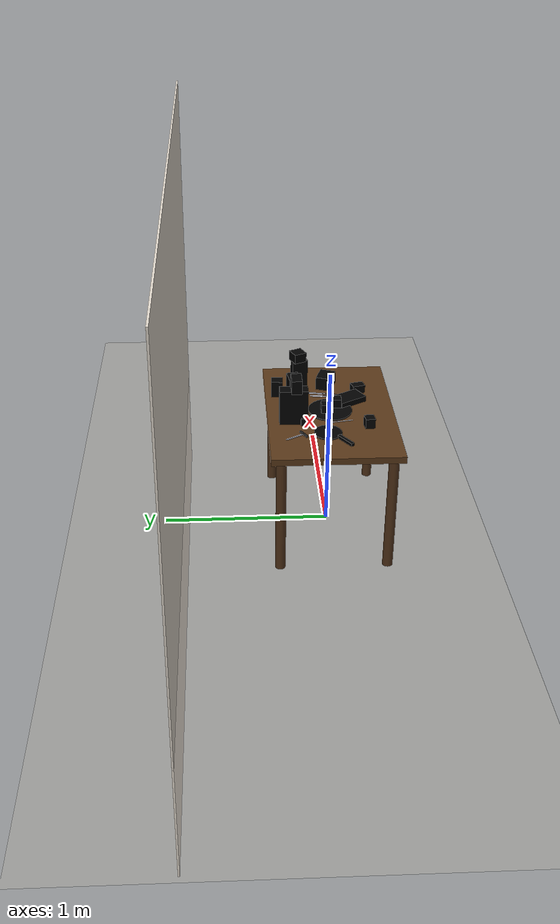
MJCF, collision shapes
<mujoco>
  <compiler angle="degree"/>
  <option timestep="0.0005" gravity="0 0 -9.81" integrator="implicitfast" cone="elliptic" noslip_iterations="5"/>
  <visual><global offwidth="1920" offheight="1440"/><headlight diffuse="0.55 0.55 0.55" ambient="0.38 0.38 0.38" specular="0.25 0.25 0.25"/><quality shadowsize="4096"/></visual>
  <asset>
    <mesh name="v0" file="/root/.openclaw/workspace-lab/scene-gen/data/assets/ycb/029_plate/029_plate/google_16k/textured.obj"/>
    <mesh name="v1" file="/root/.openclaw/workspace-lab/scene-gen/data/assets/ycb/013_apple/013_apple/google_16k/textured.obj"/>
    <mesh name="v2" file="/root/.openclaw/workspace-lab/scene-gen/data/assets/ycb/017_orange/017_orange/google_16k/textured.obj"/>
    <mesh name="v3" file="/root/.openclaw/workspace-lab/scene-gen/data/assets/ycb/024_bowl/024_bowl/google_16k/textured.obj"/>
    <mesh name="v4" file="/root/.openclaw/workspace-lab/scene-gen/data/assets/ycb/014_lemon/014_lemon/google_16k/textured.obj"/>
    <mesh name="v5" file="/root/.openclaw/workspace-lab/scene-gen/data/assets/ycb/003_cracker_box/003_cracker_box/google_16k/textured.obj"/>
    <mesh name="v6" file="/root/.openclaw/workspace-lab/scene-gen/data/assets/ycb/010_potted_meat_can/010_potted_meat_can/google_16k/textured.obj"/>
    <mesh name="v7" file="/root/.openclaw/workspace-lab/scene-gen/data/assets/ycb/006_mustard_bottle/006_mustard_bottle/google_16k/textured.obj"/>
    <mesh name="v8" file="/root/.openclaw/workspace-lab/scene-gen/data/assets/ycb/005_tomato_soup_can/005_tomato_soup_can/google_16k/textured.obj"/>
    <mesh name="v9" file="/root/.openclaw/workspace-lab/scene-gen/data/assets/ycb/004_sugar_box/004_sugar_box/google_16k/textured.obj"/>
    <mesh name="v10" file="/root/.openclaw/workspace-lab/scene-gen/data/assets/ycb/077_rubiks_cube/077_rubiks_cube/google_16k/textured.obj"/>
    <mesh name="v11" file="/root/.openclaw/workspace-lab/scene-gen/data/assets/ycb/025_mug/025_mug/google_16k/textured.obj"/>
    <mesh name="v12" file="/root/.openclaw/workspace-lab/scene-gen/data/assets/ycb/065-a_cups/065-a_cups/google_16k/textured.obj"/>
    <mesh name="v13" file="/root/.openclaw/workspace-lab/scene-gen/data/assets/ycb/011_banana/011_banana/google_16k/textured.obj"/>
    <mesh name="v14" file="/root/.openclaw/workspace-lab/scene-gen/data/assets/ycb/040_large_marker/040_large_marker/google_16k/textured.obj"/>
    <mesh name="v15" file="/root/.openclaw/workspace-lab/scene-gen/data/assets/ycb/061_foam_brick/061_foam_brick/google_16k/textured.obj"/>
    <texture name="tw" type="2d" builtin="flat" rgb1="0.35 0.22 0.10" rgb2="0.32 0.20 0.08" width="512" height="512" mark="random" markrgb="0.38 0.24 0.12" random="0.03"/>
    <texture name="tf" type="2d" builtin="checker" rgb1="0.75 0.72 0.68" rgb2="0.70 0.67 0.63" width="512" height="512"/>
    <texture name="tex0" type="2d" file="/root/.openclaw/workspace-lab/scene-gen/data/assets/ycb/029_plate/029_plate/google_16k/texture_map.png"/>
    <texture name="tex1" type="2d" file="/root/.openclaw/workspace-lab/scene-gen/data/assets/ycb/013_apple/013_apple/google_16k/texture_map.png"/>
    <texture name="tex2" type="2d" file="/root/.openclaw/workspace-lab/scene-gen/data/assets/ycb/017_orange/017_orange/google_16k/texture_map.png"/>
    <texture name="tex3" type="2d" file="/root/.openclaw/workspace-lab/scene-gen/data/assets/ycb/024_bowl/024_bowl/google_16k/texture_map.png"/>
    <texture name="tex4" type="2d" file="/root/.openclaw/workspace-lab/scene-gen/data/assets/ycb/014_lemon/014_lemon/google_16k/texture_map.png"/>
    <texture name="tex5" type="2d" file="/root/.openclaw/workspace-lab/scene-gen/data/assets/ycb/003_cracker_box/003_cracker_box/google_16k/texture_map.png"/>
    <texture name="tex6" type="2d" file="/root/.openclaw/workspace-lab/scene-gen/data/assets/ycb/010_potted_meat_can/010_potted_meat_can/google_16k/texture_map.png"/>
    <texture name="tex7" type="2d" file="/root/.openclaw/workspace-lab/scene-gen/data/assets/ycb/006_mustard_bottle/006_mustard_bottle/google_16k/texture_map.png"/>
    <texture name="tex8" type="2d" file="/root/.openclaw/workspace-lab/scene-gen/data/assets/ycb/005_tomato_soup_can/005_tomato_soup_can/google_16k/texture_map.png"/>
    <texture name="tex9" type="2d" file="/root/.openclaw/workspace-lab/scene-gen/data/assets/ycb/004_sugar_box/004_sugar_box/google_16k/texture_map.png"/>
    <texture name="tex10" type="2d" file="/root/.openclaw/workspace-lab/scene-gen/data/assets/ycb/077_rubiks_cube/077_rubiks_cube/google_16k/texture_map.png"/>
    <texture name="tex11" type="2d" file="/root/.openclaw/workspace-lab/scene-gen/data/assets/ycb/025_mug/025_mug/google_16k/texture_map.png"/>
    <texture name="tex12" type="2d" file="/root/.openclaw/workspace-lab/scene-gen/data/assets/ycb/065-a_cups/065-a_cups/google_16k/texture_map.png"/>
    <texture name="tex13" type="2d" file="/root/.openclaw/workspace-lab/scene-gen/data/assets/ycb/011_banana/011_banana/google_16k/texture_map.png"/>
    <texture name="tex14" type="2d" file="/root/.openclaw/workspace-lab/scene-gen/data/assets/ycb/040_large_marker/040_large_marker/google_16k/texture_map.png"/>
    <texture name="tex15" type="2d" file="/root/.openclaw/workspace-lab/scene-gen/data/assets/ycb/061_foam_brick/061_foam_brick/google_16k/texture_map.png"/>
    <material name="tm" texture="tw" shininess="0.4" specular="0.25" reflectance="0.05"/>
    <material name="fm" texture="tf" shininess="0.12" texrepeat="8 8"/>
    <material name="wm" rgba="0.88 0.85 0.80 1" shininess="0.05"/>
    <material name="m0" texture="tex0" shininess="0.4" specular="0.25"/>
    <material name="m1" texture="tex1" shininess="0.4" specular="0.25"/>
    <material name="m2" texture="tex2" shininess="0.4" specular="0.25"/>
    <material name="m3" texture="tex3" shininess="0.4" specular="0.25"/>
    <material name="m4" texture="tex4" shininess="0.4" specular="0.25"/>
    <material name="m5" texture="tex5" shininess="0.4" specular="0.25"/>
    <material name="m6" texture="tex6" shininess="0.4" specular="0.25"/>
    <material name="m7" texture="tex7" shininess="0.4" specular="0.25"/>
    <material name="m8" texture="tex8" shininess="0.4" specular="0.25"/>
    <material name="m9" texture="tex9" shininess="0.4" specular="0.25"/>
    <material name="m10" texture="tex10" shininess="0.4" specular="0.25"/>
    <material name="m11" texture="tex11" shininess="0.4" specular="0.25"/>
    <material name="m12" texture="tex12" shininess="0.4" specular="0.25"/>
    <material name="m13" texture="tex13" shininess="0.4" specular="0.25"/>
    <material name="m14" texture="tex14" shininess="0.4" specular="0.25"/>
    <material name="m15" texture="tex15" shininess="0.4" specular="0.25"/>

    <material name="steel" rgba="0.78 0.78 0.82 1" shininess="0.9" specular="0.7" reflectance="0.3"/>
    <material name="dark_handle" rgba="0.20 0.12 0.08 1" shininess="0.3" specular="0.1"/>
    <material name="black_plastic" rgba="0.12 0.12 0.12 1" shininess="0.2" specular="0.1"/>

  </asset>
  <worldbody>
    <light pos="0.3 -0.4 2.0" dir="-0.15 0.2 -1" diffuse="0.92 0.87 0.80" castshadow="true"/>
    <light pos="-0.4 0.5 1.8" dir="0.2 -0.25 -1" diffuse="0.35 0.35 0.38"/>
    <light pos="0 -0.3 1.6" dir="0 0.15 -1" diffuse="0.25 0.23 0.22"/>
    <geom type="plane" size="3 3 0.01" material="fm" friction="0.8 0.005 0.001"/>
    <geom type="box" size="2 0.005 1.5" pos="0 0.9 0.75" material="wm"/>
    <body name="table" pos="0 0 0.75">
      <geom type="box" size="0.55 0.375 0.02" material="tm" mass="50"
            friction="0.8 0.005 0.001" solref="0.002 1" solimp="0.98 0.99 0.001" condim="4"/>
    </body>
    <geom type="cylinder" size="0.03 0.375" pos="0.49000000000000005 0.315 0.375" rgba="0.32 0.20 0.10 1"/>
    <geom type="cylinder" size="0.03 0.375" pos="-0.49000000000000005 0.315 0.375" rgba="0.32 0.20 0.10 1"/>
    <geom type="cylinder" size="0.03 0.375" pos="0.49000000000000005 -0.315 0.375" rgba="0.32 0.20 0.10 1"/>
    <geom type="cylinder" size="0.03 0.375" pos="-0.49000000000000005 -0.315 0.375" rgba="0.32 0.20 0.10 1"/>
    <body name="o0" pos="0.0000 0.0000 0.77511" quat="1.0000 0 0 0.0000"><freejoint name="fj0"/><geom name="vis0" type="mesh" mesh="v0" material="m0" contype="0" conaffinity="0" mass="0"/><geom name="col0" type="cylinder" size="0.13008 0.004" pos="-0.01162 0.00002 0.00089" rgba="0 0 0 0" mass="0.2790" friction="0.8 0.005 0.001" solref="0.004 1" solimp="0.95 0.99 0.001" condim="4"/></body>
    <body name="o1" pos="-0.0300 0.0300 0.77629" quat="1.0000 0 0 0.0000"><freejoint name="fj1"/><geom name="vis1" type="mesh" mesh="v1" material="m1" contype="0" conaffinity="0" mass="0"/><geom name="col1" type="box" size="0.03018 0.02995 0.02876" pos="0.00086 -0.00378 0.02836" rgba="0 0 0 0" mass="0.0680" friction="1.0 0.01 0.001" solref="0.004 1" solimp="0.95 0.99 0.001" condim="4"/></body>
    <body name="o2" pos="0.0400 -0.0200 0.77615" quat="1.0000 0 0 0.0000"><freejoint name="fj2"/><geom name="vis2" type="mesh" mesh="v2" material="m2" contype="0" conaffinity="0" mass="0"/><geom name="col2" type="box" size="0.02886 0.02959 0.02854" pos="-0.00694 -0.01836 0.02829" rgba="0 0 0 0" mass="0.0470" friction="1.0 0.01 0.001" solref="0.004 1" solimp="0.95 0.99 0.001" condim="4"/></body>
    <body name="o3" pos="-0.2600 0.0800 0.77253" quat="1.0000 0 0 0.0000"><freejoint name="fj3"/><geom name="vis3" type="mesh" mesh="v3" material="m3" contype="0" conaffinity="0" mass="0"/><geom name="col3" type="cylinder" size="0.08073 0.004" pos="-0.01484 -0.04369 0.00347" rgba="0 0 0 0" mass="0.1470" friction="0.8 0.005 0.001" solref="0.004 1" solimp="0.95 0.99 0.001" condim="4"/></body>
    <body name="o4" pos="-0.1500 0.1400 0.77223" quat="1.0000 0 0 0.0000"><freejoint name="fj4"/><geom name="vis4" type="mesh" mesh="v4" material="m4" contype="0" conaffinity="0" mass="0"/><geom name="col4" type="box" size="0.02424 0.02372 0.02121" pos="-0.01058 0.02165 0.02097" rgba="0 0 0 0" mass="0.0290" friction="1.0 0.01 0.001" solref="0.004 1" solimp="0.95 0.99 0.001" condim="4"/></body>
    <body name="o5" pos="-0.1200 0.2400 0.77524" quat="1.0000 0 0 0.0000"><freejoint name="fj5"/><geom name="vis5" type="mesh" mesh="v5" material="m5" contype="0" conaffinity="0" mass="0"/><geom name="col5" type="box" size="0.03590 0.08202 0.10672" pos="-0.01289 -0.01414 0.10348" rgba="0 0 0 0" mass="0.4110" friction="0.6 0.005 0.001" solref="0.004 1" solimp="0.95 0.99 0.001" condim="4"/></body>
    <body name="o6" pos="-0.1200 0.2400 0.98863" quat="1.0000 0 0 0.0000"><freejoint name="fj6"/><geom name="vis6" type="mesh" mesh="v6" material="m6" contype="0" conaffinity="0" mass="0"/><geom name="col6" type="box" size="0.05104 0.03005 0.04177" pos="-0.03278 -0.02655 0.03858" rgba="0 0 0 0" mass="0.3700" friction="0.5 0.005 0.001" solref="0.004 1" solimp="0.95 0.99 0.001" condim="4"/></body>
    <body name="o7" pos="0.0800 0.2400 0.77515" quat="0.9976 0 0 0.0698"><freejoint name="fj7"/><geom name="vis7" type="mesh" mesh="v7" material="m7" contype="0" conaffinity="0" mass="0"/><geom name="col7" type="box" size="0.04860 0.03331 0.09565" pos="-0.01534 -0.02350 0.09250" rgba="0 0 0 0" mass="0.6030" friction="0.4 0.005 0.001" solref="0.004 1" solimp="0.95 0.99 0.001" condim="4"/></body>
    <body name="o8" pos="0.2000 0.2200 0.77192" quat="0.9990 0 0 -0.0436"><freejoint name="fj8"/><geom name="vis8" type="mesh" mesh="v8" material="m8" contype="0" conaffinity="0" mass="0"/><geom name="col8" type="box" size="0.03396 0.03387 0.05093" pos="-0.00917 0.08402 0.05101" rgba="0 0 0 0" mass="0.3490" friction="0.5 0.005 0.001" solref="0.004 1" solimp="0.95 0.99 0.001" condim="4"/></body>
    <body name="o9" pos="0.3200 0.1800 0.77197" quat="0.9962 0 0 0.0872"><freejoint name="fj9"/><geom name="vis9" type="mesh" mesh="v9" material="m9" contype="0" conaffinity="0" mass="0"/><geom name="col9" type="box" size="0.02475 0.04708 0.08801" pos="-0.00747 -0.01671 0.08804" rgba="0 0 0 0" mass="0.5140" friction="0.6 0.005 0.001" solref="0.004 1" solimp="0.95 0.99 0.001" condim="4"/></body>
    <body name="o10" pos="0.3200 0.1800 0.94833" quat="0.9763 0 0 0.2164"><freejoint name="fj10"/><geom name="vis10" type="mesh" mesh="v10" material="m10" contype="0" conaffinity="0" mass="0"/><geom name="col10" type="box" size="0.03787 0.03806 0.02897" pos="-0.01610 -0.00050 0.02865" rgba="0 0 0 0" mass="0.0910" friction="0.5 0.005 0.001" solref="0.004 1" solimp="0.95 0.99 0.001" condim="4"/></body>
    <body name="o11" pos="0.3000 -0.0200 0.77253" quat="0.9848 0 0 -0.1736"><freejoint name="fj11"/><geom name="vis11" type="mesh" mesh="v11" material="m11" contype="0" conaffinity="0" mass="0"/><geom name="col11" type="box" size="0.05849 0.04657 0.04065" pos="-0.00886 0.01734 0.04012" rgba="0 0 0 0" mass="0.1180" friction="0.5 0.005 0.001" solref="0.004 1" solimp="0.95 0.99 0.001" condim="4"/></body>
    <body name="o12" pos="-0.1800 -0.1600 0.77275" quat="0.9990 0 0 0.0436"><freejoint name="fj12"/><geom name="vis12" type="mesh" mesh="v12" material="m12" contype="0" conaffinity="0" mass="0"/><geom name="col12" type="box" size="0.02854 0.02871 0.03076" pos="-0.03189 -0.04540 0.03001" rgba="0 0 0 0" mass="0.0050" friction="0.4 0.005 0.001" solref="0.004 1" solimp="0.95 0.99 0.001" condim="4"/></body>
    <body name="o13" pos="0.0800 -0.1200 0.77241" quat="0.9659 0 0 0.2588"><freejoint name="fj13"/><geom name="vis13" type="mesh" mesh="v13" material="m13" contype="0" conaffinity="0" mass="0"/><geom name="col13" type="box" size="0.05447 0.08922 0.01837" pos="0.01148 -0.00734 0.01796" rgba="0 0 0 0" mass="0.0660" friction="0.8 0.005 0.001" solref="0.004 1" solimp="0.95 0.99 0.001" condim="4"/></body>
    <body name="o14" pos="-0.3500 -0.0800 0.77227" quat="0.8870 0 0 -0.4617"><freejoint name="fj14"/><geom name="vis14" type="mesh" mesh="v14" material="m14" contype="0" conaffinity="0" mass="0"/><geom name="col14" type="box" size="0.01051 0.06048 0.00945" pos="-0.03569 -0.00508 0.00917" rgba="0 0 0 0" mass="0.0160" friction="0.5 0.005 0.001" solref="0.004 1" solimp="0.95 0.99 0.001" condim="4"/></body>
    <body name="o15" pos="0.2400 -0.2000 0.77235" quat="0.9914 0 0 0.1305"><freejoint name="fj15"/><geom name="vis15" type="mesh" mesh="v15" material="m15" contype="0" conaffinity="0" mass="0"/><geom name="col15" type="box" size="0.02628 0.03894 0.02560" pos="-0.01826 0.01720 0.02525" rgba="0 0 0 0" mass="0.0280" friction="0.8 0.005 0.001" solref="0.004 1" solimp="0.95 0.99 0.001" condim="4"/></body>
    <body name="o16" pos="0.16 0.0 0.77300" quat="0.9990 0 0 -0.0436"><freejoint name="fj16"/><geom type="box" size="0.005 0.07 0.0015" pos="0 -0.04 0" material="steel" mass="0.04" friction="0.4 0.005 0.001" solref="0.004 1" solimp="0.95 0.99 0.001" condim="4"/>
  <geom type="box" size="0.008 0.04 0.001" pos="0 0.05 0" material="steel" mass="0.015"/>
  <geom type="box" size="0.001 0.02 0.0008" pos="-0.005 0.085 0" material="steel" mass="0.002"/>
  <geom type="box" size="0.001 0.02 0.0008" pos="-0.0017 0.085 0" material="steel" mass="0.002"/>
  <geom type="box" size="0.001 0.02 0.0008" pos="0.0017 0.085 0" material="steel" mass="0.002"/>
  <geom type="box" size="0.001 0.02 0.0008" pos="0.005 0.085 0" material="steel" mass="0.002"/></body>
    <body name="o17" pos="0.19 0.02 0.77300" quat="0.9976 0 0 -0.0698"><freejoint name="fj17"/><geom type="box" size="0.006 0.055 0.003" pos="0 -0.045 0" material="dark_handle" mass="0.03" friction="0.5 0.005 0.001" solref="0.004 1" solimp="0.95 0.99 0.001" condim="4"/>
  <geom type="box" size="0.001 0.065 0.008" pos="0 0.055 0" material="steel" mass="0.04"/></body>
    <body name="o18" pos="-0.15 -0.03 0.77300" quat="0.9962 0 0 0.0872"><freejoint name="fj18"/><geom type="box" size="0.003 0.065 0.001" pos="0 -0.030 0" material="steel" mass="0.025" friction="0.4 0.005 0.001" solref="0.004 1" solimp="0.95 0.99 0.001" condim="4"/>
  <geom type="ellipsoid" size="0.009 0.013 0.003" pos="0 0.045 0.001" material="steel" mass="0.015"/></body>
    <body name="o19" pos="-0.30 0.20 0.77500" quat="0.9659 0 0 0.2588">
  <freejoint name="fj19"/>
  <geom type="box" size="0.002 0.06 0.002" pos="-0.003 0.03 0" material="steel" mass="0.02" friction="0.4 0.005 0.001" solref="0.004 1" solimp="0.95 0.99 0.001" condim="4"/>
  <geom type="capsule" size="0.008 0.018" pos="-0.012 -0.028 0" quat="0.707 0 0.707 0" material="black_plastic" mass="0.01"/>
  <geom type="cylinder" size="0.003 0.003" pos="0 0 0" material="steel" mass="0.005"/>
  <body name="sc_blade2" pos="0 0 0">
    <joint name="scissors_hinge" type="hinge" axis="0 0 1" range="-5 20" stiffness="0.5" damping="0.1"/>
    <geom type="box" size="0.002 0.06 0.002" pos="0.003 0.03 0" material="steel" mass="0.02"/>
    <geom type="capsule" size="0.008 0.018" pos="0.012 -0.028 0" quat="0.707 0 0.707 0" material="black_plastic" mass="0.01"/>
  </body>
</body>
  </worldbody>
</mujoco>
